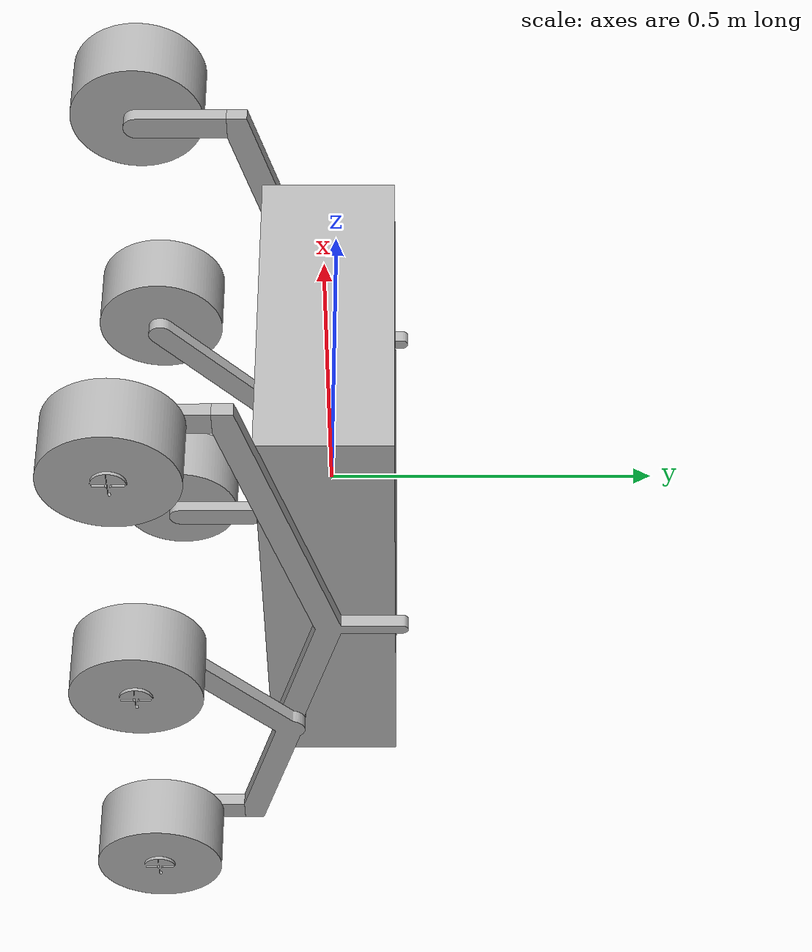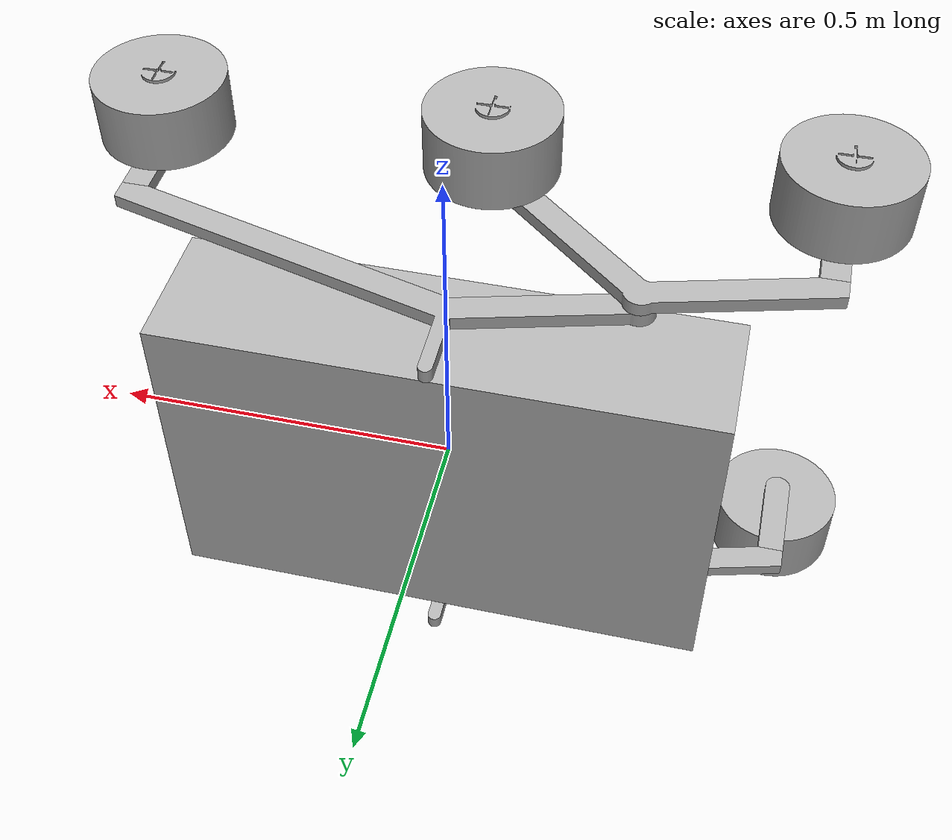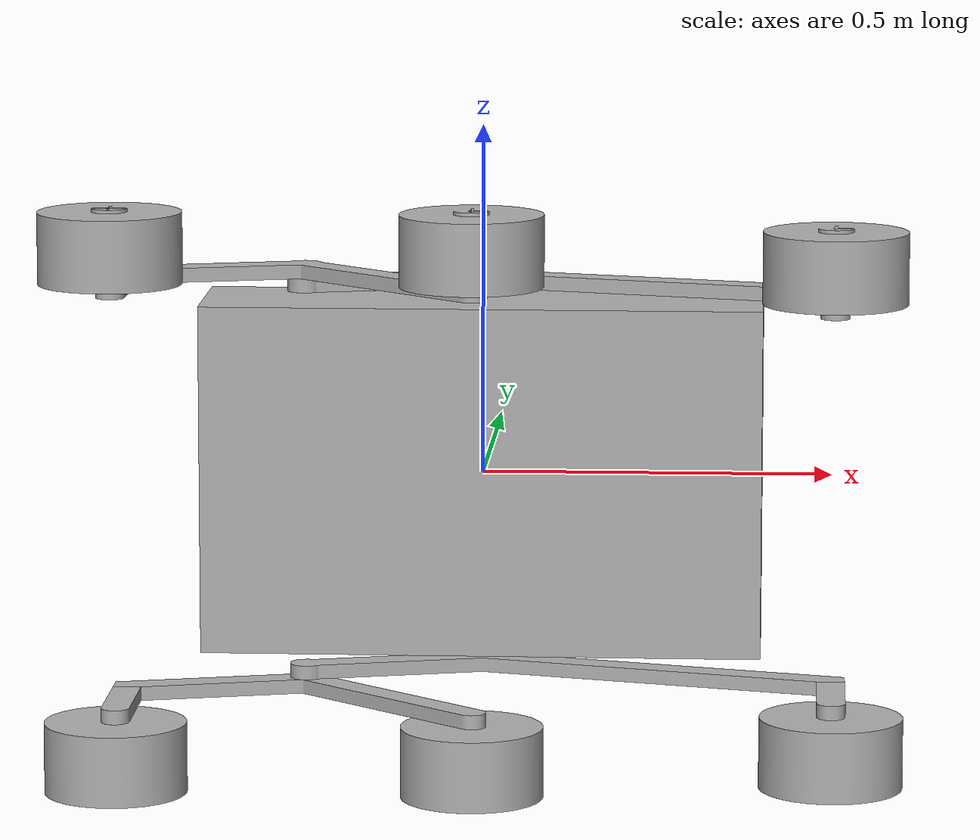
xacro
<?xml version="1.0" ?>
<robot name="mini_model" xmlns:xacro="http://www.ros.org/wiki/xacro">

<xacro:include filename="$(find mini_model_description)/urdf/materials.xacro" />
<xacro:include filename="$(find mini_model_description)/urdf/mini_model.trans" />

<xacro:include filename="$(find mini_model_description)/urdf/mini_model.ignition.gazebo" />

<link name="base_link">
  <inertial>
    <origin xyz="0.0 0.0 0.0" rpy="0 0 0"/>
    <mass value="628.0"/>
    <inertia ixx="15.176667" iyy="46.576667" izz="35.586667" ixy="0.0" iyz="0.0" ixz="0.0"/>
  </inertial>
  <visual>
    <origin xyz="0 0 0" rpy="0 0 0"/>
    <geometry>
      <mesh filename="file://$(find mini_model_description)/meshes/base_link.stl" scale="0.001 0.001 0.001"/>
    </geometry>
    <material name="silver"/>
  </visual>
  <collision>
    <origin xyz="0 0 0" rpy="0 0 0"/>
    <geometry>
      <mesh filename="file://$(find mini_model_description)/meshes/base_link.stl" scale="0.001 0.001 0.001"/>
    </geometry>
  </collision>
</link>

<link name="component__8__1">
  <inertial>
    <origin xyz="0.1134912204829699 -0.05030777295699913 0.029954747066772536" rpy="0 0 0"/>
    <mass value="5.449702499230522"/>
    <inertia ixx="0.013083" iyy="0.270388" izz="0.283097" ixy="0.036122" iyz="1.2e-05" ixz="-2.8e-05"/>
  </inertial>
  <visual>
    <origin xyz="-0.0 -0.0 -0.25" rpy="0 0 0"/>
    <geometry>
      <mesh filename="file://$(find mini_model_description)/meshes/component__8__1.stl" scale="0.001 0.001 0.001"/>
    </geometry>
    <material name="silver"/>
  </visual>
  <collision>
    <origin xyz="-0.0 -0.0 -0.25" rpy="0 0 0"/>
    <geometry>
      <mesh filename="file://$(find mini_model_description)/meshes/component__8__1.stl" scale="0.001 0.001 0.001"/>
    </geometry>
  </collision>
</link>

<link name="component__1__1">
  <inertial>
    <origin xyz="0.014564589996318489 -0.07826500014971428 0.010000000000000009" rpy="0 0 0"/>
    <mass value="3.923134667678356"/>
    <inertia ixx="0.016852" iyy="0.089659" izz="0.106249" ixy="0.027919" iyz="-0.0" ixz="0.0"/>
  </inertial>
  <visual>
    <origin xyz="0.25 0.066987 -0.29" rpy="0 0 0"/>
    <geometry>
      <mesh filename="file://$(find mini_model_description)/meshes/component__1__1.stl" scale="0.001 0.001 0.001"/>
    </geometry>
    <material name="silver"/>
  </visual>
  <collision>
    <origin xyz="0.25 0.066987 -0.29" rpy="0 0 0"/>
    <geometry>
      <mesh filename="file://$(find mini_model_description)/meshes/component__1__1.stl" scale="0.001 0.001 0.001"/>
    </geometry>
  </collision>
</link>

<link name="component__2__1">
  <inertial>
    <origin xyz="8.326672684688674e-16 -0.07524710992668415 0.0" rpy="0 0 0"/>
    <mass value="0.9442697396325618"/>
    <inertia ixx="0.00182" iyy="0.000154" izz="0.001911" ixy="0.0" iyz="-0.0" ixz="-0.0"/>
  </inertial>
  <visual>
    <origin xyz="0.5 0.149321 -0.3" rpy="0 0 0"/>
    <geometry>
      <mesh filename="file://$(find mini_model_description)/meshes/component__2__1.stl" scale="0.001 0.001 0.001"/>
    </geometry>
    <material name="silver"/>
  </visual>
  <collision>
    <origin xyz="0.5 0.149321 -0.3" rpy="0 0 0"/>
    <geometry>
      <mesh filename="file://$(find mini_model_description)/meshes/component__2__1.stl" scale="0.001 0.001 0.001"/>
    </geometry>
  </collision>
</link>

<link name="component__3__1">
  <inertial>
    <origin xyz="-1.3322676295501878e-15 -0.07524710992668368 0.0" rpy="0 0 0"/>
    <mass value="0.9442697396325564"/>
    <inertia ixx="0.00182" iyy="0.000154" izz="0.001911" ixy="0.0" iyz="0.0" ixz="0.0"/>
  </inertial>
  <visual>
    <origin xyz="-0.5 0.149321 -0.28" rpy="0 0 0"/>
    <geometry>
      <mesh filename="file://$(find mini_model_description)/meshes/component__3__1.stl" scale="0.001 0.001 0.001"/>
    </geometry>
    <material name="silver"/>
  </visual>
  <collision>
    <origin xyz="-0.5 0.149321 -0.28" rpy="0 0 0"/>
    <geometry>
      <mesh filename="file://$(find mini_model_description)/meshes/component__3__1.stl" scale="0.001 0.001 0.001"/>
    </geometry>
  </collision>
</link>

<link name="component__4__1">
  <inertial>
    <origin xyz="8.326672684688674e-16 4.037844391069356e-07 0.050132954214166414" rpy="0 0 0"/>
    <mass value="24.72411519366146"/>
    <inertia ixx="0.082388" iyy="0.082388" izz="0.123329" ixy="0.0" iyz="0.0" ixz="0.0"/>
  </inertial>
  <visual>
    <origin xyz="0.5 0.283975 -0.31" rpy="0 0 0"/>
    <geometry>
      <mesh filename="file://$(find mini_model_description)/meshes/component__4__1.stl" scale="0.001 0.001 0.001"/>
    </geometry>
    <material name="silver"/>
  </visual>
  <collision>
    <origin xyz="0.5 0.283975 -0.31" rpy="0 0 0"/>
    <geometry>
      <mesh filename="file://$(find mini_model_description)/meshes/component__4__1.stl" scale="0.001 0.001 0.001"/>
    </geometry>
  </collision>
</link>

<link name="component__5__1">
  <inertial>
    <origin xyz="-3.003187247395517e-16 4.0378443955102483e-07 0.050132954214166414" rpy="0 0 0"/>
    <mass value="24.724115193661465"/>
    <inertia ixx="0.082388" iyy="0.082388" izz="0.123329" ixy="0.0" iyz="0.0" ixz="0.0"/>
  </inertial>
  <visual>
    <origin xyz="0.0 0.283975 -0.31" rpy="0 0 0"/>
    <geometry>
      <mesh filename="file://$(find mini_model_description)/meshes/component__5__1.stl" scale="0.001 0.001 0.001"/>
    </geometry>
    <material name="silver"/>
  </visual>
  <collision>
    <origin xyz="0.0 0.283975 -0.31" rpy="0 0 0"/>
    <geometry>
      <mesh filename="file://$(find mini_model_description)/meshes/component__5__1.stl" scale="0.001 0.001 0.001"/>
    </geometry>
  </collision>
</link>

<link name="component__6__1">
  <inertial>
    <origin xyz="-1.4432899320127035e-15 4.037844399396029e-07 0.05013295421416647" rpy="0 0 0"/>
    <mass value="24.72411519366146"/>
    <inertia ixx="0.082388" iyy="0.082388" izz="0.123329" ixy="0.0" iyz="-0.0" ixz="0.0"/>
  </inertial>
  <visual>
    <origin xyz="-0.5 0.283975 -0.29" rpy="0 0 0"/>
    <geometry>
      <mesh filename="file://$(find mini_model_description)/meshes/component__6__1.stl" scale="0.001 0.001 0.001"/>
    </geometry>
    <material name="silver"/>
  </visual>
  <collision>
    <origin xyz="-0.5 0.283975 -0.29" rpy="0 0 0"/>
    <geometry>
      <mesh filename="file://$(find mini_model_description)/meshes/component__6__1.stl" scale="0.001 0.001 0.001"/>
    </geometry>
  </collision>
</link>

<link name="component__7__1">
  <inertial>
    <origin xyz="0.11349122048296997 -0.0503077729569992 -0.02995474706677259" rpy="0 0 0"/>
    <mass value="5.449702499230521"/>
    <inertia ixx="0.013083" iyy="0.270388" izz="0.283097" ixy="0.036122" iyz="-1.2e-05" ixz="2.8e-05"/>
  </inertial>
  <visual>
    <origin xyz="-0.0 -0.0 0.25" rpy="0 0 0"/>
    <geometry>
      <mesh filename="file://$(find mini_model_description)/meshes/component__7__1.stl" scale="0.001 0.001 0.001"/>
    </geometry>
    <material name="silver"/>
  </visual>
  <collision>
    <origin xyz="-0.0 -0.0 0.25" rpy="0 0 0"/>
    <geometry>
      <mesh filename="file://$(find mini_model_description)/meshes/component__7__1.stl" scale="0.001 0.001 0.001"/>
    </geometry>
  </collision>
</link>

<link name="component__9__1">
  <inertial>
    <origin xyz="0.014564589996318461 -0.07826500014971409 -0.010000000000000064" rpy="0 0 0"/>
    <mass value="3.9231346676783514"/>
    <inertia ixx="0.016852" iyy="0.089659" izz="0.106249" ixy="0.027919" iyz="0.0" ixz="0.0"/>
  </inertial>
  <visual>
    <origin xyz="0.25 0.066987 0.29" rpy="0 0 0"/>
    <geometry>
      <mesh filename="file://$(find mini_model_description)/meshes/component__9__1.stl" scale="0.001 0.001 0.001"/>
    </geometry>
    <material name="silver"/>
  </visual>
  <collision>
    <origin xyz="0.25 0.066987 0.29" rpy="0 0 0"/>
    <geometry>
      <mesh filename="file://$(find mini_model_description)/meshes/component__9__1.stl" scale="0.001 0.001 0.001"/>
    </geometry>
  </collision>
</link>

<link name="component__11__1">
  <inertial>
    <origin xyz="-1.3322676295501878e-15 -0.07524710992668368 0.0" rpy="0 0 0"/>
    <mass value="0.9442697396325564"/>
    <inertia ixx="0.00182" iyy="0.000154" izz="0.001911" ixy="0.0" iyz="0.0" ixz="-0.0"/>
  </inertial>
  <visual>
    <origin xyz="-0.5 0.149321 0.28" rpy="0 0 0"/>
    <geometry>
      <mesh filename="file://$(find mini_model_description)/meshes/component__11__1.stl" scale="0.001 0.001 0.001"/>
    </geometry>
    <material name="silver"/>
  </visual>
  <collision>
    <origin xyz="-0.5 0.149321 0.28" rpy="0 0 0"/>
    <geometry>
      <mesh filename="file://$(find mini_model_description)/meshes/component__11__1.stl" scale="0.001 0.001 0.001"/>
    </geometry>
  </collision>
</link>

<link name="component__10__1">
  <inertial>
    <origin xyz="8.326672684688674e-16 -0.07524710992668415 0.0" rpy="0 0 0"/>
    <mass value="0.9442697396325618"/>
    <inertia ixx="0.00182" iyy="0.000154" izz="0.001911" ixy="0.0" iyz="-0.0" ixz="0.0"/>
  </inertial>
  <visual>
    <origin xyz="0.5 0.149321 0.3" rpy="0 0 0"/>
    <geometry>
      <mesh filename="file://$(find mini_model_description)/meshes/component__10__1.stl" scale="0.001 0.001 0.001"/>
    </geometry>
    <material name="silver"/>
  </visual>
  <collision>
    <origin xyz="0.5 0.149321 0.3" rpy="0 0 0"/>
    <geometry>
      <mesh filename="file://$(find mini_model_description)/meshes/component__10__1.stl" scale="0.001 0.001 0.001"/>
    </geometry>
  </collision>
</link>

<link name="component__14__1">
  <inertial>
    <origin xyz="6.772360450213455e-15 4.037844399396029e-07 -0.05013295421416647" rpy="0 0 0"/>
    <mass value="24.72411519366147"/>
    <inertia ixx="0.082388" iyy="0.082388" izz="0.123329" ixy="0.0" iyz="0.0" ixz="0.0"/>
  </inertial>
  <visual>
    <origin xyz="-0.5 0.283975 0.29" rpy="0 0 0"/>
    <geometry>
      <mesh filename="file://$(find mini_model_description)/meshes/component__14__1.stl" scale="0.001 0.001 0.001"/>
    </geometry>
    <material name="silver"/>
  </visual>
  <collision>
    <origin xyz="-0.5 0.283975 0.29" rpy="0 0 0"/>
    <geometry>
      <mesh filename="file://$(find mini_model_description)/meshes/component__14__1.stl" scale="0.001 0.001 0.001"/>
    </geometry>
  </collision>
</link>

<link name="component__13__1">
  <inertial>
    <origin xyz="7.866040444139796e-15 4.03784439606536e-07 -0.050132954214166414" rpy="0 0 0"/>
    <mass value="24.724115193661465"/>
    <inertia ixx="0.082388" iyy="0.082388" izz="0.123329" ixy="0.0" iyz="-0.0" ixz="0.0"/>
  </inertial>
  <visual>
    <origin xyz="0.0 0.283975 0.31" rpy="0 0 0"/>
    <geometry>
      <mesh filename="file://$(find mini_model_description)/meshes/component__13__1.stl" scale="0.001 0.001 0.001"/>
    </geometry>
    <material name="silver"/>
  </visual>
  <collision>
    <origin xyz="0.0 0.283975 0.31" rpy="0 0 0"/>
    <geometry>
      <mesh filename="file://$(find mini_model_description)/meshes/component__13__1.stl" scale="0.001 0.001 0.001"/>
    </geometry>
  </collision>
</link>

<link name="component__12__1">
  <inertial>
    <origin xyz="9.048317650695026e-15 4.0378443905142447e-07 -0.050132954214166525" rpy="0 0 0"/>
    <mass value="24.72411519366147"/>
    <inertia ixx="0.082388" iyy="0.082388" izz="0.123329" ixy="0.0" iyz="0.0" ixz="0.0"/>
  </inertial>
  <visual>
    <origin xyz="0.5 0.283975 0.31" rpy="0 0 0"/>
    <geometry>
      <mesh filename="file://$(find mini_model_description)/meshes/component__12__1.stl" scale="0.001 0.001 0.001"/>
    </geometry>
    <material name="silver"/>
  </visual>
  <collision>
    <origin xyz="0.5 0.283975 0.31" rpy="0 0 0"/>
    <geometry>
      <mesh filename="file://$(find mini_model_description)/meshes/component__12__1.stl" scale="0.001 0.001 0.001"/>
    </geometry>
  </collision>
</link>

<joint name="Revolute 25" type="revolute">
  <origin xyz="0.0 0.0 0.25" rpy="0 0 0"/>
  <parent link="base_link"/>
  <child link="component__8__1"/>
  <axis xyz="0.0 0.0 1.0"/>
  <limit upper="0.523599" lower="-0.523599" effort="100" velocity="100"/>
</joint>

<joint name="Revolute 26" type="revolute">
  <origin xyz="-0.25 -0.066987 0.04" rpy="0 0 0"/>
  <parent link="component__8__1"/>
  <child link="component__1__1"/>
  <axis xyz="0.0 0.0 1.0"/>
  <limit upper="0.523599" lower="-0.523599" effort="100" velocity="100"/>
</joint>

<joint name="Revolute 27" type="revolute">
  <origin xyz="-0.25 -0.082334 0.01" rpy="0 0 0"/>
  <parent link="component__1__1"/>
  <child link="component__2__1"/>
  <axis xyz="0.0 -1.0 0.0"/>
  <limit upper="0.785398" lower="-0.785398" effort="100" velocity="100"/>
</joint>

<joint name="Revolute 28" type="revolute">
  <origin xyz="0.5 -0.149321 0.03" rpy="0 0 0"/>
  <parent link="component__8__1"/>
  <child link="component__3__1"/>
  <axis xyz="0.0 -1.0 0.0"/>
  <limit upper="0.785398" lower="-0.785398" effort="100" velocity="100"/>
</joint>

<joint name="Revolute 29" type="continuous">
  <origin xyz="0.0 -0.134654 0.01" rpy="0 0 0"/>
  <parent link="component__2__1"/>
  <child link="component__4__1"/>
  <axis xyz="0.0 0.0 1.0"/>
</joint>

<joint name="Revolute 30" type="continuous">
  <origin xyz="0.25 -0.216988 0.02" rpy="0 0 0"/>
  <parent link="component__1__1"/>
  <child link="component__5__1"/>
  <axis xyz="0.0 0.0 1.0"/>
</joint>

<joint name="Revolute 31" type="continuous">
  <origin xyz="0.0 -0.134654 0.01" rpy="0 0 0"/>
  <parent link="component__3__1"/>
  <child link="component__6__1"/>
  <axis xyz="0.0 0.0 1.0"/>
</joint>

<joint name="Revolute 32" type="revolute">
  <origin xyz="0.0 0.0 -0.25" rpy="0 0 0"/>
  <parent link="base_link"/>
  <child link="component__7__1"/>
  <axis xyz="0.0 0.0 -1.0"/>
  <limit upper="0.523599" lower="-0.523599" effort="100" velocity="100"/>
</joint>

<joint name="Revolute 33" type="revolute">
  <origin xyz="-0.25 -0.066987 -0.04" rpy="0 0 0"/>
  <parent link="component__7__1"/>
  <child link="component__9__1"/>
  <axis xyz="0.0 0.0 -1.0"/>
  <limit upper="0.523599" lower="-0.523599" effort="100" velocity="100"/>
</joint>

<joint name="Revolute 34" type="revolute">
  <origin xyz="0.5 -0.149321 -0.03" rpy="0 0 0"/>
  <parent link="component__7__1"/>
  <child link="component__11__1"/>
  <axis xyz="0.0 -1.0 0.0"/>
  <limit upper="0.785398" lower="-0.785398" effort="100" velocity="100"/>
</joint>

<joint name="Revolute 35" type="revolute">
  <origin xyz="-0.25 -0.082334 -0.01" rpy="0 0 0"/>
  <parent link="component__9__1"/>
  <child link="component__10__1"/>
  <axis xyz="0.0 -1.0 0.0"/>
  <limit upper="0.785398" lower="-0.785398" effort="100" velocity="100"/>
</joint>

<joint name="Revolute 36" type="continuous">
  <origin xyz="0.0 -0.134654 -0.01" rpy="0 0 0"/>
  <parent link="component__11__1"/>
  <child link="component__14__1"/>
  <axis xyz="0.0 0.0 -1.0"/>
</joint>

<joint name="Revolute 37" type="continuous">
  <origin xyz="0.25 -0.216988 -0.02" rpy="0 0 0"/>
  <parent link="component__9__1"/>
  <child link="component__13__1"/>
  <axis xyz="0.0 0.0 -1.0"/>
</joint>

<joint name="Revolute 38" type="continuous">
  <origin xyz="0.0 -0.134654 -0.01" rpy="0 0 0"/>
  <parent link="component__10__1"/>
  <child link="component__12__1"/>
  <axis xyz="0.0 0.0 -1.0"/>
</joint>

</robot>

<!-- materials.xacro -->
<robot name="mini_model" xmlns:xacro="http://www.ros.org/wiki/xacro" >

<material name="silver">
  <color rgba="0.700 0.700 0.700 1.000"/>
</material>

<!-- Sensor Materials -->
<material name="camera_gray">
  <color rgba="0.5 0.5 0.5 1.0"/>
</material>

<material name="lidar_black">
  <color rgba="0.1 0.1 0.1 1.0"/>
</material>

<material name="imu_blue">
  <color rgba="0.0 0.3 0.8 1.0"/>
</material>

<material name="gps_green">
  <color rgba="0.0 0.8 0.3 1.0"/>
</material>

</robot>

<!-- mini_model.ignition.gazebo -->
<robot name="mini_model" xmlns:xacro="http://www.ros.org/wiki/xacro" >

<xacro:property name="body_color" value="Gazebo/Silver" />

<!-- Ignition Gazebo plugins -->
<gazebo>
  <!-- Joint State Publisher - publishes joint positions and velocities -->
  <plugin filename="libignition-gazebo-joint-state-publisher-system.so" name="ignition::gazebo::systems::JointStatePublisher">
    <joint_name>Revolute 25</joint_name>
    <joint_name>Revolute 26</joint_name>
    <joint_name>Revolute 27</joint_name>
    <joint_name>Revolute 28</joint_name>
    <joint_name>Revolute 29</joint_name>
    <joint_name>Revolute 30</joint_name>
    <joint_name>Revolute 31</joint_name>
    <joint_name>Revolute 32</joint_name>
    <joint_name>Revolute 33</joint_name>
    <joint_name>Revolute 34</joint_name>
    <joint_name>Revolute 35</joint_name>
    <joint_name>Revolute 36</joint_name>
    <joint_name>Revolute 37</joint_name>
    <joint_name>Revolute 38</joint_name>
  </plugin>

  <!-- Joint Position Controllers - separate instance for each steering joint -->
  <plugin filename="libignition-gazebo-joint-position-controller-system.so" name="ignition::gazebo::systems::JointPositionController">
    <joint_name>Revolute 27</joint_name>  <!-- Rear Right Steering -->
    <topic>/model/mini_model/joint/Revolute_27/0/cmd_pos</topic>
  </plugin>

  <plugin filename="libignition-gazebo-joint-position-controller-system.so" name="ignition::gazebo::systems::JointPositionController">
    <joint_name>Revolute 28</joint_name>  <!-- Front Right Steering -->
    <topic>/model/mini_model/joint/Revolute_28/0/cmd_pos</topic>
  </plugin>

  <plugin filename="libignition-gazebo-joint-position-controller-system.so" name="ignition::gazebo::systems::JointPositionController">
    <joint_name>Revolute 34</joint_name>  <!-- Front Left Steering -->
    <topic>/model/mini_model/joint/Revolute_34/0/cmd_pos</topic>
  </plugin>

  <plugin filename="libignition-gazebo-joint-position-controller-system.so" name="ignition::gazebo::systems::JointPositionController">
    <joint_name>Revolute 35</joint_name>  <!-- Rear Left Steering -->
    <topic>/model/mini_model/joint/Revolute_35/0/cmd_pos</topic>
  </plugin>

  <!-- Joint Velocity Controllers - separate instance for each drive wheel -->
  <plugin filename="libignition-gazebo-joint-controller-system.so" name="ignition::gazebo::systems::JointController">
    <joint_name>Revolute 29</joint_name>  <!-- Rear Right Drive -->
    <topic>/model/mini_model/joint/Revolute_29/cmd_vel</topic>
  </plugin>

  <plugin filename="libignition-gazebo-joint-controller-system.so" name="ignition::gazebo::systems::JointController">
    <joint_name>Revolute 30</joint_name>  <!-- Middle Right Drive -->
    <topic>/model/mini_model/joint/Revolute_30/cmd_vel</topic>
  </plugin>

  <plugin filename="libignition-gazebo-joint-controller-system.so" name="ignition::gazebo::systems::JointController">
    <joint_name>Revolute 31</joint_name>  <!-- Front Right Drive -->
    <topic>/model/mini_model/joint/Revolute_31/cmd_vel</topic>
  </plugin>

  <plugin filename="libignition-gazebo-joint-controller-system.so" name="ignition::gazebo::systems::JointController">
    <joint_name>Revolute 36</joint_name>  <!-- Front Left Drive -->
    <topic>/model/mini_model/joint/Revolute_36/cmd_vel</topic>
  </plugin>

  <plugin filename="libignition-gazebo-joint-controller-system.so" name="ignition::gazebo::systems::JointController">
    <joint_name>Revolute 37</joint_name>  <!-- Middle Left Drive -->
    <topic>/model/mini_model/joint/Revolute_37/cmd_vel</topic>
  </plugin>

  <plugin filename="libignition-gazebo-joint-controller-system.so" name="ignition::gazebo::systems::JointController">
    <joint_name>Revolute 38</joint_name>  <!-- Rear Left Drive -->
    <topic>/model/mini_model/joint/Revolute_38/cmd_vel</topic>
  </plugin>

  <!-- Pose Publisher for robot localization -->
  <plugin filename="libignition-gazebo-pose-publisher-system.so" name="ignition::gazebo::systems::PosePublisher">
    <publish_link_pose>true</publish_link_pose>
    <use_pose_vector_msg>true</use_pose_vector_msg>
    <static_publisher>true</static_publisher>
    <static_update_frequency>1</static_update_frequency>
  </plugin>
</gazebo>

<gazebo reference="base_link">
  <material>${body_color}</material>
  <mu1>0.2</mu1>
  <mu2>0.2</mu2>
  <self_collide>true</self_collide>
  <gravity>true</gravity>
</gazebo>

<gazebo reference="component__8__1">
  <material>${body_color}</material>
  <mu1>0.2</mu1>
  <mu2>0.2</mu2>
  <self_collide>true</self_collide>
</gazebo>

<gazebo reference="component__1__1">
  <material>${body_color}</material>
  <mu1>0.2</mu1>
  <mu2>0.2</mu2>
  <self_collide>true</self_collide>
</gazebo>

<gazebo reference="component__2__1">
  <material>${body_color}</material>
  <mu1>0.2</mu1>
  <mu2>0.2</mu2>
  <self_collide>true</self_collide>
</gazebo>

<gazebo reference="component__3__1">
  <material>${body_color}</material>
  <mu1>0.2</mu1>
  <mu2>0.2</mu2>
  <self_collide>true</self_collide>
</gazebo>

<gazebo reference="component__4__1">
  <material>${body_color}</material>
  <mu1>0.2</mu1>
  <mu2>0.2</mu2>
  <self_collide>true</self_collide>
</gazebo>

<gazebo reference="component__5__1">
  <material>${body_color}</material>
  <mu1>0.2</mu1>
  <mu2>0.2</mu2>
  <self_collide>true</self_collide>
</gazebo>

<gazebo reference="component__6__1">
  <material>${body_color}</material>
  <mu1>0.2</mu1>
  <mu2>0.2</mu2>
  <self_collide>true</self_collide>
</gazebo>

<gazebo reference="component__7__1">
  <material>${body_color}</material>
  <mu1>0.2</mu1>
  <mu2>0.2</mu2>
  <self_collide>true</self_collide>
</gazebo>

<gazebo reference="component__9__1">
  <material>${body_color}</material>
  <mu1>0.2</mu1>
  <mu2>0.2</mu2>
  <self_collide>true</self_collide>
</gazebo>

<gazebo reference="component__11__1">
  <material>${body_color}</material>
  <mu1>0.2</mu1>
  <mu2>0.2</mu2>
  <self_collide>true</self_collide>
</gazebo>

<gazebo reference="component__10__1">
  <material>${body_color}</material>
  <mu1>0.2</mu1>
  <mu2>0.2</mu2>
  <self_collide>true</self_collide>
</gazebo>

<gazebo reference="component__14__1">
  <material>${body_color}</material>
  <mu1>0.2</mu1>
  <mu2>0.2</mu2>
  <self_collide>true</self_collide>
</gazebo>

<gazebo reference="component__13__1">
  <material>${body_color}</material>
  <mu1>0.2</mu1>
  <mu2>0.2</mu2>
  <self_collide>true</self_collide>
</gazebo>

<gazebo reference="component__12__1">
  <material>${body_color}</material>
  <mu1>0.2</mu1>
  <mu2>0.2</mu2>
  <self_collide>true</self_collide>
</gazebo>

</robot>
